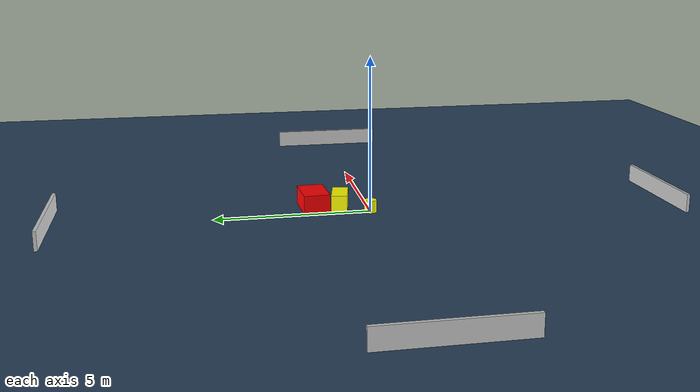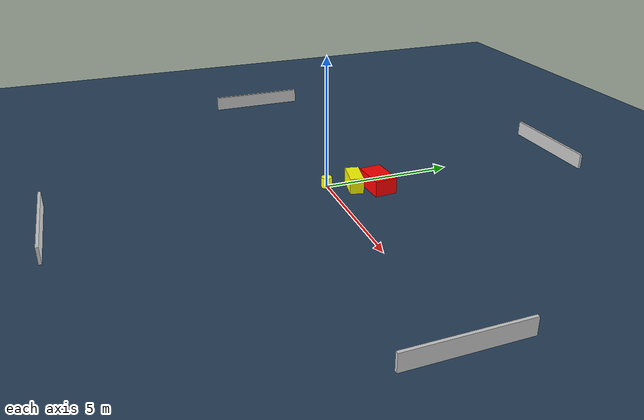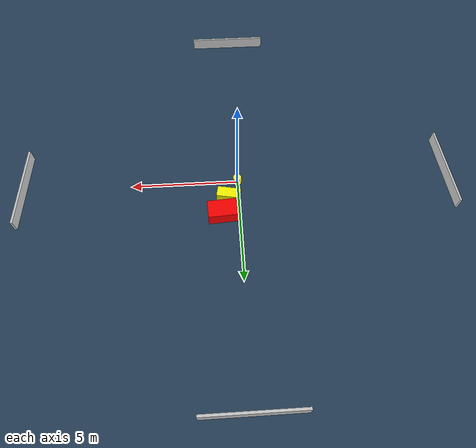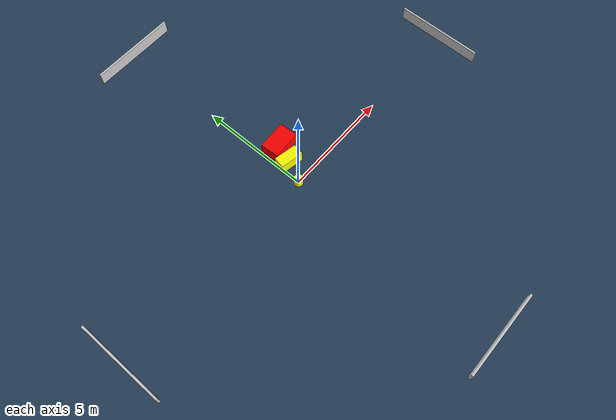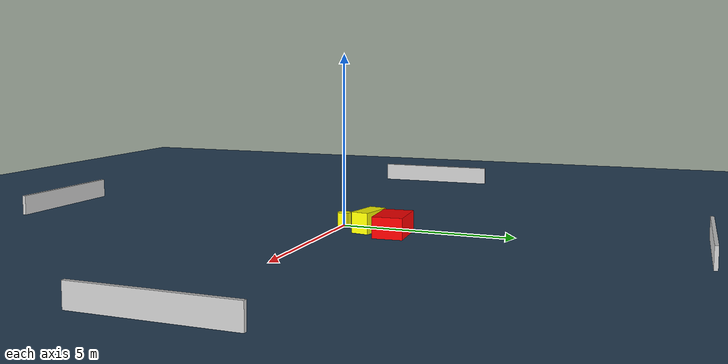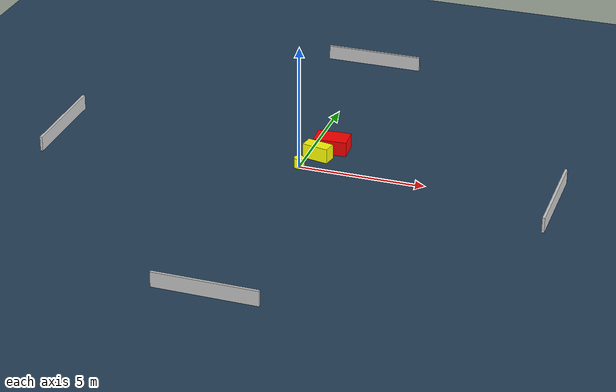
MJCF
<?xml version="1.0" ?>
<mujoco model="generated_environment">
  <option timestep="0.01" integrator="RK4" cone="elliptic"/>
  <default>
    <geom density="1"/>
  </default>
  <asset>
    <texture builtin="gradient" height="3072" name="skybox" rgb1="0.3 0.5 0.7" rgb2="0 0 0" type="skybox" width="512"/>
    <texture builtin="checker" height="300" name="groundplane" rgb1="0.2 0.3 0.4" rgb2="0.1 0.2 0.3" type="2d" width="300"/>
    <material name="groundplane" reflectance="0.2" texrepeat="5 5" texture="groundplane"/>
  </asset>
  <worldbody>
    <light dir="0 0 -1" directional="true" pos="0 0 1.5"/>
    <geom condim="3" friction="0.5 0.005 0.001" material="groundplane" name="floor" pos="0 0 0" size="0 0 0.05" type="plane"/>
    <body name="walls">
      <geom name="wall_1" condim="4" pos="-10.0 0.0 0.3" rgba="0.800000011920929 0.800000011920929 0.800000011920929 1.0" size="0.05 2.0 0.3" type="box"/>
      <geom name="wall_2" condim="4" pos="10.0 0.0 0.3" rgba="0.800000011920929 0.800000011920929 0.800000011920929 1.0" size="0.05 2.0 0.3" type="box"/>
      <geom name="wall_3" condim="4" pos="0.0 -10.0 0.3" rgba="0.800000011920929 0.800000011920929 0.800000011920929 1.0" size="2.0 0.05 0.3" type="box"/>
      <geom name="wall_4" condim="4" pos="0.0 10.0 0.3" rgba="0.800000011920929 0.800000011920929 0.800000011920929 1.0" size="2.0 0.05 0.3" type="box"/>
    </body>
    <body name="robot">
      <joint name="joint_x" type="slide" pos="0 0 0" axis="1 0 0"/>
      <joint name="joint_y" type="slide" pos="0 0 0" axis="0 1 0"/>
      <geom name="robot" type="cylinder" pos="0.0 0.0 0.2" size="0.2 0.2 0.0" mass="5.0" friction="1.0 0.005 0.0001" condim="4" rgba="1.0 1.0 0.0 1.0"/>
    </body>
    <body name="obstacle_1_movable">
      <geom name="obstacle_1_movable" condim="4" pos="0.4453768503328305 0.9316589675854016 0.3" euler="0 0 259.01869607160904" friction="0.0 0.005 0.001" rgba="1.0 1.0 0.0 1.0" size="0.2551019147796263 0.5301456537943066 0.3" type="box" mass="0.1"/>
      <joint type="free"/>
    </body>
    <body name="obstacle_2_static">
      <geom name="obstacle_2_static" condim="4" pos="0.7638516206897351 1.7520807118286146 0.3" euler="0 0 93.63478252697237" friction="0.0 0.005 0.001" rgba="1.0 0.0 0.0 1.0" size="0.42542938596939006 0.6632194872857156 0.3" type="box"/>
    </body>
  </worldbody>
  <actuator>
    <motor name="actuator_x" joint="joint_x" gear="1" ctrlrange="-1 1"/>
    <motor name="actuator_y" joint="joint_y" gear="1" ctrlrange="-1 1"/>
  </actuator>
</mujoco>
